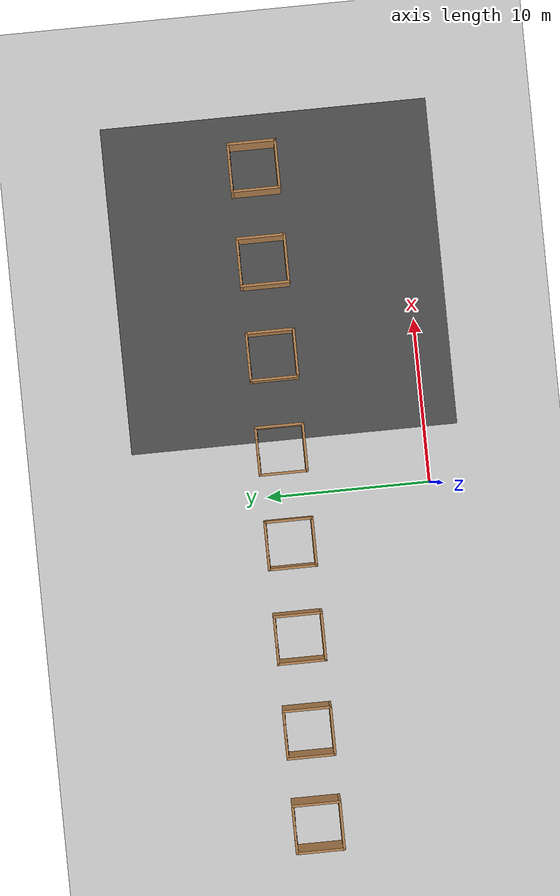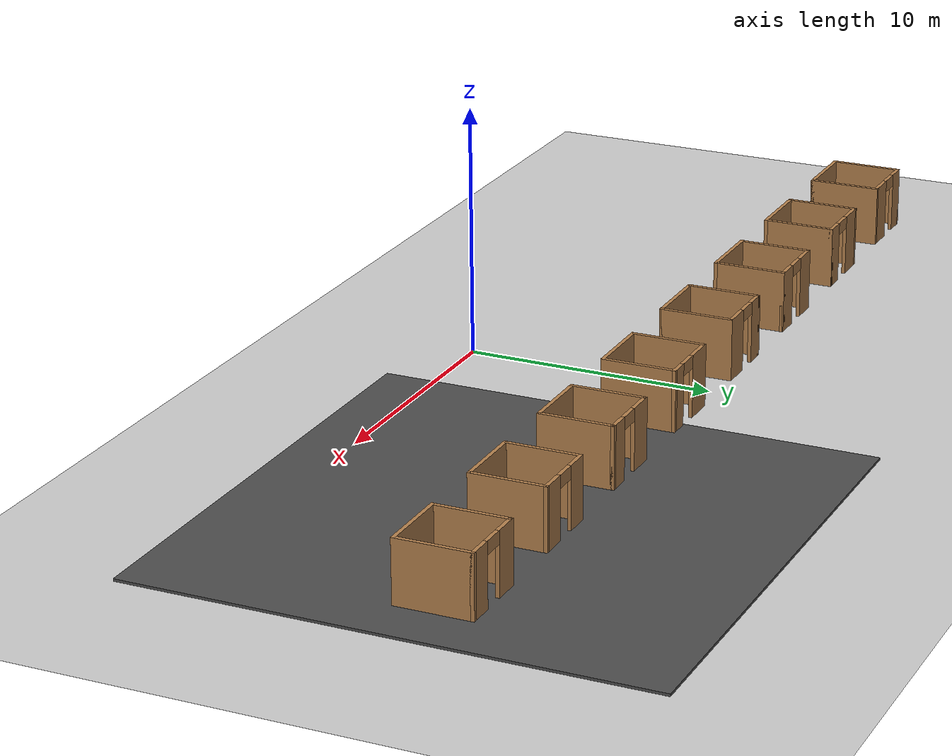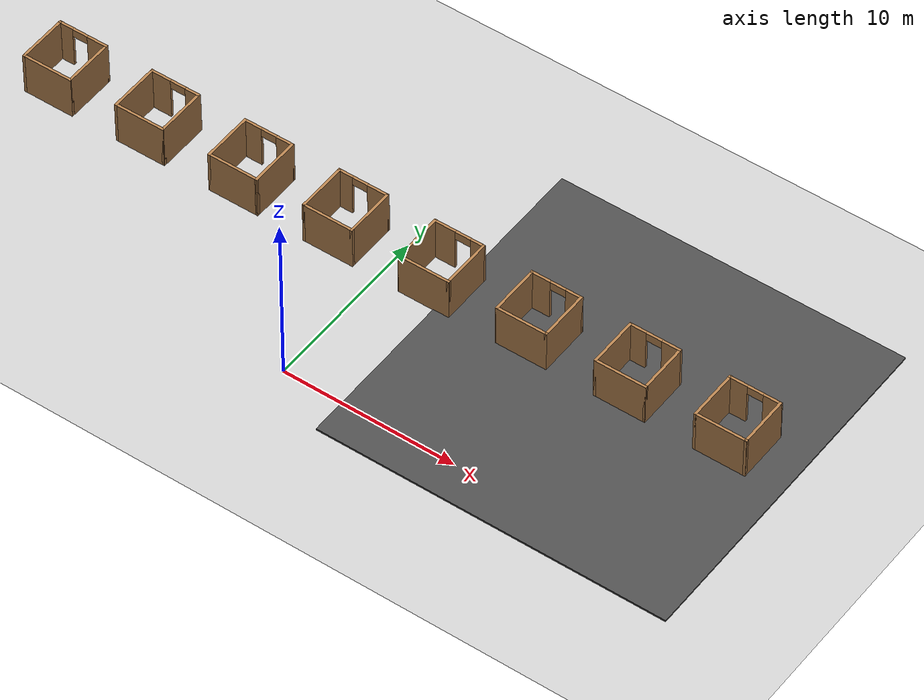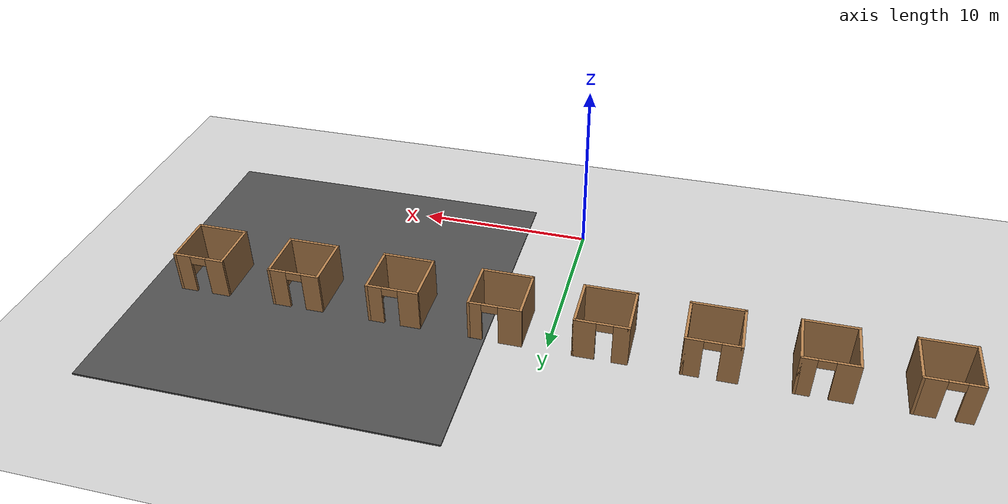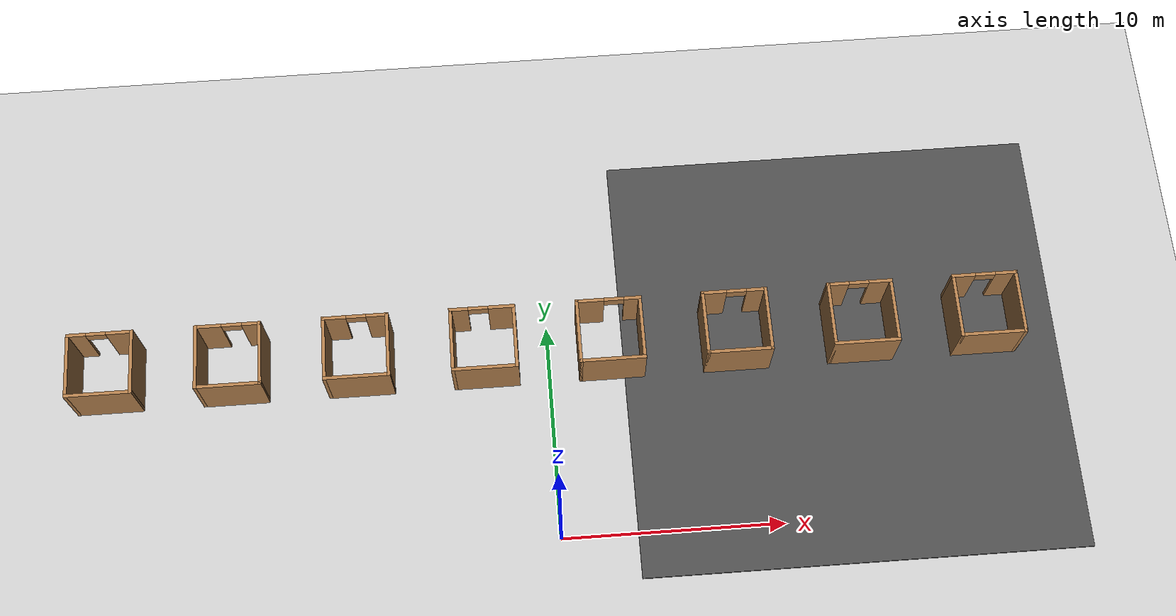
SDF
<sdf version="1.6">
 <world name="default">
  <model name="ground_plane">
   <static>1</static>
   <link name="link">
    <collision name="collision">
     <geometry><plane><normal>0 0 1</normal><size>100 100</size></plane></geometry>
     <surface>
      <contact><collide_bitmask>65535</collide_bitmask></contact>
      <friction><ode><mu>100</mu><mu2>50</mu2></ode></friction>
     </surface>
    </collision>
    <visual name="visual">
     <cast_shadows>0</cast_shadows>
     <geometry><plane><normal>0 0 1</normal><size>100 100</size></plane></geometry>
     <material>
      <script><uri>file://media/materials/scripts/gazebo.material</uri><name>Gazebo/Grey</name></script>
     </material>
    </visual>
   </link>
  </model>
  <model name="room_row_clone_clone_1">
   <pose>-0.00322 8.84362 0 0 -0 0</pose>
   <link name="Wall_11">
    <collision name="Wall_11_Collision">
     <geometry><box><size>3 0.15 2.5</size></box></geometry>
     <pose>0 0 1.25 0 -0 0</pose>
    </collision>
    <visual name="Wall_11_Visual">
     <pose>0 0 1.25 0 -0 0</pose>
     <geometry><box><size>3 0.15 2.5</size></box></geometry>
     <material>
      <script><uri>file://media/materials/scripts/gazebo.material</uri><name>Gazebo/Wood</name></script>
      <ambient>1 1 1 1</ambient>
     </material>
     <meta><layer>0</layer></meta>
    </visual>
    <pose>1.425 0 0 0 -0 -1.5708</pose>
   </link>
   <link name="Wall_12">
    <collision name="Wall_12_Collision">
     <geometry><box><size>3 0.15 2.5</size></box></geometry>
     <pose>0 0 1.25 0 -0 0</pose>
    </collision>
    <visual name="Wall_12_Visual">
     <pose>0 0 1.25 0 -0 0</pose>
     <geometry><box><size>3 0.15 2.5</size></box></geometry>
     <material>
      <script><uri>file://media/materials/scripts/gazebo.material</uri><name>Gazebo/Wood</name></script>
      <ambient>1 1 1 1</ambient>
     </material>
     <meta><layer>0</layer></meta>
    </visual>
    <pose>2.85 -1.425 0 0 -0 0</pose>
   </link>
   <link name="Wall_13">
    <collision name="Wall_13_Collision">
     <geometry><box><size>3 0.15 2.5</size></box></geometry>
     <pose>0 0 1.25 0 -0 0</pose>
    </collision>
    <visual name="Wall_13_Visual">
     <pose>0 0 1.25 0 -0 0</pose>
     <geometry><box><size>3 0.15 2.5</size></box></geometry>
     <material>
      <script><uri>file://media/materials/scripts/gazebo.material</uri><name>Gazebo/Wood</name></script>
      <ambient>1 1 1 1</ambient>
     </material>
     <meta><layer>0</layer></meta>
    </visual>
    <pose>4.275 0 0 0 -0 1.5708</pose>
   </link>
   <link name="Wall_14">
    <pose>2.85 1.425 0 0 -0 3.14159</pose>
    <visual name="Wall_14_Visual_0">
     <pose>-1.10207 0 1.25 0 -0 0</pose>
     <geometry><box><size>0.795857 0.15 2.5</size></box></geometry>
     <material>
      <script><uri>file://media/materials/scripts/gazebo.material</uri><name>Gazebo/Wood</name></script>
      <ambient>1 1 1 1</ambient>
     </material>
     <meta><layer>0</layer></meta>
    </visual>
    <collision name="Wall_14_Collision_0">
     <geometry><box><size>0.795857 0.15 2.5</size></box></geometry>
     <pose>-1.10207 0 1.25 0 -0 0</pose>
    </collision>
    <visual name="Wall_14_Visual_1">
     <pose>0.847928 0 1.25 0 -0 0</pose>
     <geometry><box><size>1.30414 0.15 2.5</size></box></geometry>
     <material>
      <script><uri>file://media/materials/scripts/gazebo.material</uri><name>Gazebo/Wood</name></script>
      <ambient>1 1 1 1</ambient>
     </material>
     <meta><layer>0</layer></meta>
    </visual>
    <collision name="Wall_14_Collision_1">
     <geometry><box><size>1.30414 0.15 2.5</size></box></geometry>
     <pose>0.847928 0 1.25 0 -0 0</pose>
    </collision>
    <visual name="Wall_14_Visual_2">
     <pose>-0.254143 0 2.25 0 -0 0</pose>
     <geometry><box><size>0.9 0.15 0.5</size></box></geometry>
     <material>
      <script><uri>file://media/materials/scripts/gazebo.material</uri><name>Gazebo/Wood</name></script>
      <ambient>1 1 1 1</ambient>
     </material>
     <meta><layer>0</layer></meta>
    </visual>
    <collision name="Wall_14_Collision_2">
     <geometry><box><size>0.9 0.15 0.5</size></box></geometry>
     <pose>-0.254143 0 2.25 0 -0 0</pose>
    </collision>
   </link>
   <link name="Wall_17">
    <collision name="Wall_17_Collision">
     <geometry><box><size>3 0.15 2.5</size></box></geometry>
     <pose>0 0 1.25 0 -0 0</pose>
    </collision>
    <visual name="Wall_17_Visual">
     <pose>0 0 1.25 0 -0 0</pose>
     <geometry><box><size>3 0.15 2.5</size></box></geometry>
     <material>
      <script><uri>file://media/materials/scripts/gazebo.material</uri><name>Gazebo/Wood</name></script>
      <ambient>1 1 1 1</ambient>
     </material>
     <meta><layer>0</layer></meta>
    </visual>
    <pose>7.125 0 0 0 -0 -1.5708</pose>
   </link>
   <link name="Wall_18">
    <collision name="Wall_18_Collision">
     <geometry><box><size>3 0.15 2.5</size></box></geometry>
     <pose>0 0 1.25 0 -0 0</pose>
    </collision>
    <visual name="Wall_18_Visual">
     <pose>0 0 1.25 0 -0 0</pose>
     <geometry><box><size>3 0.15 2.5</size></box></geometry>
     <material>
      <script><uri>file://media/materials/scripts/gazebo.material</uri><name>Gazebo/Wood</name></script>
      <ambient>1 1 1 1</ambient>
     </material>
     <meta><layer>0</layer></meta>
    </visual>
    <pose>8.55 -1.425 0 0 -0 0</pose>
   </link>
   <link name="Wall_19">
    <collision name="Wall_19_Collision">
     <geometry><box><size>3 0.15 2.5</size></box></geometry>
     <pose>0 0 1.25 0 -0 0</pose>
    </collision>
    <visual name="Wall_19_Visual">
     <pose>0 0 1.25 0 -0 0</pose>
     <geometry><box><size>3 0.15 2.5</size></box></geometry>
     <material>
      <script><uri>file://media/materials/scripts/gazebo.material</uri><name>Gazebo/Wood</name></script>
      <ambient>1 1 1 1</ambient>
     </material>
     <meta><layer>0</layer></meta>
    </visual>
    <pose>9.975 0 0 0 -0 1.5708</pose>
   </link>
   <link name="Wall_20">
    <pose>8.55 1.425 0 0 -0 3.14159</pose>
    <visual name="Wall_20_Visual_0">
     <pose>-1.03119 0 1.25 0 -0 0</pose>
     <geometry><box><size>0.937612 0.15 2.5</size></box></geometry>
     <material>
      <script><uri>file://media/materials/scripts/gazebo.material</uri><name>Gazebo/Wood</name></script>
      <ambient>1 1 1 1</ambient>
     </material>
     <meta><layer>0</layer></meta>
    </visual>
    <collision name="Wall_20_Collision_0">
     <geometry><box><size>0.937612 0.15 2.5</size></box></geometry>
     <pose>-1.03119 0 1.25 0 -0 0</pose>
    </collision>
    <visual name="Wall_20_Visual_1">
     <pose>0.918806 0 1.25 0 -0 0</pose>
     <geometry><box><size>1.16239 0.15 2.5</size></box></geometry>
     <material>
      <script><uri>file://media/materials/scripts/gazebo.material</uri><name>Gazebo/Wood</name></script>
      <ambient>1 1 1 1</ambient>
     </material>
     <meta><layer>0</layer></meta>
    </visual>
    <collision name="Wall_20_Collision_1">
     <geometry><box><size>1.16239 0.15 2.5</size></box></geometry>
     <pose>0.918806 0 1.25 0 -0 0</pose>
    </collision>
    <visual name="Wall_20_Visual_2">
     <pose>-0.112388 0 2.25 0 -0 0</pose>
     <geometry><box><size>0.9 0.15 0.5</size></box></geometry>
     <material>
      <script><uri>file://media/materials/scripts/gazebo.material</uri><name>Gazebo/Wood</name></script>
      <ambient>1 1 1 1</ambient>
     </material>
     <meta><layer>0</layer></meta>
    </visual>
    <collision name="Wall_20_Collision_2">
     <geometry><box><size>0.9 0.15 0.5</size></box></geometry>
     <pose>-0.112388 0 2.25 0 -0 0</pose>
    </collision>
   </link>
   <link name="Wall_23">
    <collision name="Wall_23_Collision">
     <geometry><box><size>3 0.15 2.5</size></box></geometry>
     <pose>0 0 1.25 0 -0 0</pose>
    </collision>
    <visual name="Wall_23_Visual">
     <pose>0 0 1.25 0 -0 0</pose>
     <geometry><box><size>3 0.15 2.5</size></box></geometry>
     <material>
      <script><uri>file://media/materials/scripts/gazebo.material</uri><name>Gazebo/Wood</name></script>
      <ambient>1 1 1 1</ambient>
     </material>
     <meta><layer>0</layer></meta>
    </visual>
    <pose>-7.125 0 0 0 -0 -1.5708</pose>
   </link>
   <link name="Wall_24">
    <collision name="Wall_24_Collision">
     <geometry><box><size>3 0.15 2.5</size></box></geometry>
     <pose>0 0 1.25 0 -0 0</pose>
    </collision>
    <visual name="Wall_24_Visual">
     <pose>0 0 1.25 0 -0 0</pose>
     <geometry><box><size>3 0.15 2.5</size></box></geometry>
     <material>
      <script><uri>file://media/materials/scripts/gazebo.material</uri><name>Gazebo/Wood</name></script>
      <ambient>1 1 1 1</ambient>
     </material>
     <meta><layer>0</layer></meta>
    </visual>
    <pose>-8.55 -1.425 0 0 -0 3.14159</pose>
   </link>
   <link name="Wall_25">
    <collision name="Wall_25_Collision">
     <geometry><box><size>3 0.15 2.5</size></box></geometry>
     <pose>0 0 1.25 0 -0 0</pose>
    </collision>
    <visual name="Wall_25_Visual">
     <pose>0 0 1.25 0 -0 0</pose>
     <geometry><box><size>3 0.15 2.5</size></box></geometry>
     <material>
      <script><uri>file://media/materials/scripts/gazebo.material</uri><name>Gazebo/Wood</name></script>
      <ambient>1 1 1 1</ambient>
     </material>
     <meta><layer>0</layer></meta>
    </visual>
    <pose>-9.975 0 0 0 -0 1.5708</pose>
   </link>
   <link name="Wall_26">
    <pose>-8.55 1.425 0 0 -0 0</pose>
    <visual name="Wall_26_Visual_0">
     <pose>-0.952424 0 1.25 0 -0 0</pose>
     <geometry><box><size>1.09515 0.15 2.5</size></box></geometry>
     <material>
      <script><uri>file://media/materials/scripts/gazebo.material</uri><name>Gazebo/Wood</name></script>
      <ambient>1 1 1 1</ambient>
     </material>
     <meta><layer>0</layer></meta>
    </visual>
    <collision name="Wall_26_Collision_0">
     <geometry><box><size>1.09515 0.15 2.5</size></box></geometry>
     <pose>-0.952424 0 1.25 0 -0 0</pose>
    </collision>
    <visual name="Wall_26_Visual_1">
     <pose>0.997576 0 1.25 0 -0 0</pose>
     <geometry><box><size>1.00485 0.15 2.5</size></box></geometry>
     <material>
      <script><uri>file://media/materials/scripts/gazebo.material</uri><name>Gazebo/Wood</name></script>
      <ambient>1 1 1 1</ambient>
     </material>
     <meta><layer>0</layer></meta>
    </visual>
    <collision name="Wall_26_Collision_1">
     <geometry><box><size>1.00485 0.15 2.5</size></box></geometry>
     <pose>0.997576 0 1.25 0 -0 0</pose>
    </collision>
    <visual name="Wall_26_Visual_2">
     <pose>0.045152 0 2.25 0 -0 0</pose>
     <geometry><box><size>0.9 0.15 0.5</size></box></geometry>
     <material>
      <script><uri>file://media/materials/scripts/gazebo.material</uri><name>Gazebo/Wood</name></script>
      <ambient>1 1 1 1</ambient>
     </material>
     <meta><layer>0</layer></meta>
    </visual>
    <collision name="Wall_26_Collision_2">
     <geometry><box><size>0.9 0.15 0.5</size></box></geometry>
     <pose>0.045152 0 2.25 0 -0 0</pose>
    </collision>
   </link>
   <link name="Wall_29">
    <collision name="Wall_29_Collision">
     <geometry><box><size>3 0.15 2.5</size></box></geometry>
     <pose>0 0 1.25 0 -0 0</pose>
    </collision>
    <visual name="Wall_29_Visual">
     <pose>0 0 1.25 0 -0 0</pose>
     <geometry><box><size>3 0.15 2.5</size></box></geometry>
     <material>
      <script><uri>file://media/materials/scripts/gazebo.material</uri><name>Gazebo/Wood</name></script>
      <ambient>1 1 1 1</ambient>
     </material>
     <meta><layer>0</layer></meta>
    </visual>
    <pose>-12.825 0 0 0 -0 -1.5708</pose>
   </link>
   <link name="Wall_30">
    <collision name="Wall_30_Collision">
     <geometry><box><size>3 0.15 2.5</size></box></geometry>
     <pose>0 0 1.25 0 -0 0</pose>
    </collision>
    <visual name="Wall_30_Visual">
     <pose>0 0 1.25 0 -0 0</pose>
     <geometry><box><size>3 0.15 2.5</size></box></geometry>
     <material>
      <script><uri>file://media/materials/scripts/gazebo.material</uri><name>Gazebo/Wood</name></script>
      <ambient>1 1 1 1</ambient>
     </material>
     <meta><layer>0</layer></meta>
    </visual>
    <pose>-14.25 -1.425 0 0 -0 3.14159</pose>
   </link>
   <link name="Wall_31">
    <collision name="Wall_31_Collision">
     <geometry><box><size>3 0.15 2.5</size></box></geometry>
     <pose>0 0 1.25 0 -0 0</pose>
    </collision>
    <visual name="Wall_31_Visual">
     <pose>0 0 1.25 0 -0 0</pose>
     <geometry><box><size>3 0.15 2.5</size></box></geometry>
     <material>
      <script><uri>file://media/materials/scripts/gazebo.material</uri><name>Gazebo/Wood</name></script>
      <ambient>1 1 1 1</ambient>
     </material>
     <meta><layer>0</layer></meta>
    </visual>
    <pose>-15.675 0 0 0 -0 1.5708</pose>
   </link>
   <link name="Wall_32">
    <pose>-14.25 1.425 0 0 -0 0</pose>
    <visual name="Wall_32_Visual_0">
     <pose>-0.881547 0 1.25 0 -0 0</pose>
     <geometry><box><size>1.23691 0.15 2.5</size></box></geometry>
     <material>
      <script><uri>file://media/materials/scripts/gazebo.material</uri><name>Gazebo/Wood</name></script>
      <ambient>1 1 1 1</ambient>
     </material>
     <meta><layer>0</layer></meta>
    </visual>
    <collision name="Wall_32_Collision_0">
     <geometry><box><size>1.23691 0.15 2.5</size></box></geometry>
     <pose>-0.881547 0 1.25 0 -0 0</pose>
    </collision>
    <visual name="Wall_32_Visual_1">
     <pose>1.06845 0 1.25 0 -0 0</pose>
     <geometry><box><size>0.863093 0.15 2.5</size></box></geometry>
     <material>
      <script><uri>file://media/materials/scripts/gazebo.material</uri><name>Gazebo/Wood</name></script>
      <ambient>1 1 1 1</ambient>
     </material>
     <meta><layer>0</layer></meta>
    </visual>
    <collision name="Wall_32_Collision_1">
     <geometry><box><size>0.863093 0.15 2.5</size></box></geometry>
     <pose>1.06845 0 1.25 0 -0 0</pose>
    </collision>
    <visual name="Wall_32_Visual_2">
     <pose>0.186907 0 2.25 0 -0 0</pose>
     <geometry><box><size>0.9 0.15 0.5</size></box></geometry>
     <material>
      <script><uri>file://media/materials/scripts/gazebo.material</uri><name>Gazebo/Wood</name></script>
      <ambient>1 1 1 1</ambient>
     </material>
     <meta><layer>0</layer></meta>
    </visual>
    <collision name="Wall_32_Collision_2">
     <geometry><box><size>0.9 0.15 0.5</size></box></geometry>
     <pose>0.186907 0 2.25 0 -0 0</pose>
    </collision>
   </link>
   <link name="Wall_35">
    <collision name="Wall_35_Collision">
     <geometry><box><size>3 0.15 2.5</size></box></geometry>
     <pose>0 0 1.25 0 -0 0</pose>
    </collision>
    <visual name="Wall_35_Visual">
     <pose>0 0 1.25 0 -0 0</pose>
     <geometry><box><size>3 0.15 2.5</size></box></geometry>
     <material>
      <script><uri>file://media/materials/scripts/gazebo.material</uri><name>Gazebo/Wood</name></script>
      <ambient>1 1 1 1</ambient>
     </material>
     <meta><layer>0</layer></meta>
    </visual>
    <pose>12.825 0 0 0 -0 -1.5708</pose>
   </link>
   <link name="Wall_36">
    <collision name="Wall_36_Collision">
     <geometry><box><size>3 0.15 2.5</size></box></geometry>
     <pose>0 0 1.25 0 -0 0</pose>
    </collision>
    <visual name="Wall_36_Visual">
     <pose>0 0 1.25 0 -0 0</pose>
     <geometry><box><size>3 0.15 2.5</size></box></geometry>
     <material>
      <script><uri>file://media/materials/scripts/gazebo.material</uri><name>Gazebo/Wood</name></script>
      <ambient>1 1 1 1</ambient>
     </material>
     <meta><layer>0</layer></meta>
    </visual>
    <pose>14.25 -1.425 0 0 -0 0</pose>
   </link>
   <link name="Wall_37">
    <collision name="Wall_37_Collision">
     <geometry><box><size>3 0.15 2.5</size></box></geometry>
     <pose>0 0 1.25 0 -0 0</pose>
    </collision>
    <visual name="Wall_37_Visual">
     <pose>0 0 1.25 0 -0 0</pose>
     <geometry><box><size>3 0.15 2.5</size></box></geometry>
     <material>
      <script><uri>file://media/materials/scripts/gazebo.material</uri><name>Gazebo/Wood</name></script>
      <ambient>1 1 1 1</ambient>
     </material>
     <meta><layer>0</layer></meta>
    </visual>
    <pose>15.675 0 0 0 -0 1.5708</pose>
   </link>
   <link name="Wall_38">
    <pose>14.25 1.425 0 0 -0 3.14159</pose>
    <visual name="Wall_38_Visual_0">
     <pose>-0.960316 0 1.25 0 -0 0</pose>
     <geometry><box><size>1.07937 0.15 2.5</size></box></geometry>
     <material>
      <script><uri>file://media/materials/scripts/gazebo.material</uri><name>Gazebo/Wood</name></script>
      <ambient>1 1 1 1</ambient>
     </material>
     <meta><layer>0</layer></meta>
    </visual>
    <collision name="Wall_38_Collision_0">
     <geometry><box><size>1.07937 0.15 2.5</size></box></geometry>
     <pose>-0.960316 0 1.25 0 -0 0</pose>
    </collision>
    <visual name="Wall_38_Visual_1">
     <pose>0.989684 0 1.25 0 -0 0</pose>
     <geometry><box><size>1.02063 0.15 2.5</size></box></geometry>
     <material>
      <script><uri>file://media/materials/scripts/gazebo.material</uri><name>Gazebo/Wood</name></script>
      <ambient>1 1 1 1</ambient>
     </material>
     <meta><layer>0</layer></meta>
    </visual>
    <collision name="Wall_38_Collision_1">
     <geometry><box><size>1.02063 0.15 2.5</size></box></geometry>
     <pose>0.989684 0 1.25 0 -0 0</pose>
    </collision>
    <visual name="Wall_38_Visual_2">
     <pose>0.029367 0 2.25 0 -0 0</pose>
     <geometry><box><size>0.9 0.15 0.5</size></box></geometry>
     <material>
      <script><uri>file://media/materials/scripts/gazebo.material</uri><name>Gazebo/Wood</name></script>
      <ambient>1 1 1 1</ambient>
     </material>
     <meta><layer>0</layer></meta>
    </visual>
    <collision name="Wall_38_Collision_2">
     <geometry><box><size>0.9 0.15 0.5</size></box></geometry>
     <pose>0.029367 0 2.25 0 -0 0</pose>
    </collision>
   </link>
   <link name="Wall_41">
    <collision name="Wall_41_Collision">
     <geometry><box><size>3 0.15 2.5</size></box></geometry>
     <pose>0 0 1.25 0 -0 0</pose>
    </collision>
    <visual name="Wall_41_Visual">
     <pose>0 0 1.25 0 -0 0</pose>
     <geometry><box><size>3 0.15 2.5</size></box></geometry>
     <material>
      <script><uri>file://media/materials/scripts/gazebo.material</uri><name>Gazebo/Wood</name></script>
      <ambient>1 1 1 1</ambient>
     </material>
     <meta><layer>0</layer></meta>
    </visual>
    <pose>-18.525 0 0 0 -0 -1.5708</pose>
   </link>
   <link name="Wall_42">
    <collision name="Wall_42_Collision">
     <geometry><box><size>3 0.15 2.5</size></box></geometry>
     <pose>0 0 1.25 0 -0 0</pose>
    </collision>
    <visual name="Wall_42_Visual">
     <pose>0 0 1.25 0 -0 0</pose>
     <geometry><box><size>3 0.15 2.5</size></box></geometry>
     <material>
      <script><uri>file://media/materials/scripts/gazebo.material</uri><name>Gazebo/Wood</name></script>
      <ambient>1 1 1 1</ambient>
     </material>
     <meta><layer>0</layer></meta>
    </visual>
    <pose>-19.95 -1.425 0 0 -0 3.14159</pose>
   </link>
   <link name="Wall_45">
    <pose>-19.95 1.425 0 0 -0 3.14159</pose>
    <visual name="Wall_45_Visual_0">
     <pose>-0.89308 0 1.25 0 -0 0</pose>
     <geometry><box><size>1.21384 0.15 2.5</size></box></geometry>
     <material>
      <script><uri>file://media/materials/scripts/gazebo.material</uri><name>Gazebo/Wood</name></script>
      <ambient>1 1 1 1</ambient>
     </material>
     <meta><layer>0</layer></meta>
    </visual>
    <collision name="Wall_45_Collision_0">
     <geometry><box><size>1.21384 0.15 2.5</size></box></geometry>
     <pose>-0.89308 0 1.25 0 -0 0</pose>
    </collision>
    <visual name="Wall_45_Visual_1">
     <pose>1.05692 0 1.25 0 -0 0</pose>
     <geometry><box><size>0.886161 0.15 2.5</size></box></geometry>
     <material>
      <script><uri>file://media/materials/scripts/gazebo.material</uri><name>Gazebo/Wood</name></script>
      <ambient>1 1 1 1</ambient>
     </material>
     <meta><layer>0</layer></meta>
    </visual>
    <collision name="Wall_45_Collision_1">
     <geometry><box><size>0.886161 0.15 2.5</size></box></geometry>
     <pose>1.05692 0 1.25 0 -0 0</pose>
    </collision>
    <visual name="Wall_45_Visual_2">
     <pose>0.163839 0 2.25 0 -0 0</pose>
     <geometry><box><size>0.9 0.15 0.5</size></box></geometry>
     <material>
      <script><uri>file://media/materials/scripts/gazebo.material</uri><name>Gazebo/Wood</name></script>
      <ambient>1 1 1 1</ambient>
     </material>
     <meta><layer>0</layer></meta>
    </visual>
    <collision name="Wall_45_Collision_2">
     <geometry><box><size>0.9 0.15 0.5</size></box></geometry>
     <pose>0.163839 0 2.25 0 -0 0</pose>
    </collision>
   </link>
   <link name="Wall_46">
    <collision name="Wall_46_Collision">
     <geometry><box><size>3 0.15 2.5</size></box></geometry>
     <pose>0 0 1.25 0 -0 0</pose>
    </collision>
    <visual name="Wall_46_Visual">
     <pose>0 0 1.25 0 -0 0</pose>
     <geometry><box><size>3 0.15 2.5</size></box></geometry>
     <material>
      <script><uri>file://media/materials/scripts/gazebo.material</uri><name>Gazebo/Wood</name></script>
      <ambient>1 1 1 1</ambient>
     </material>
     <meta><layer>0</layer></meta>
    </visual>
    <pose>-21.375 0 0 0 -0 -1.5708</pose>
   </link>
   <link name="Wall_49">
    <collision name="Wall_49_Collision">
     <geometry><box><size>3 0.15 2.5</size></box></geometry>
     <pose>0 0 1.25 0 -0 0</pose>
    </collision>
    <visual name="Wall_49_Visual">
     <pose>0 0 1.25 0 -0 0</pose>
     <geometry><box><size>3 0.15 2.5</size></box></geometry>
     <material>
      <script><uri>file://media/materials/scripts/gazebo.material</uri><name>Gazebo/Wood</name></script>
      <ambient>1 1 1 1</ambient>
     </material>
     <meta><layer>0</layer></meta>
    </visual>
    <pose>18.525 0 0 0 -0 -1.5708</pose>
   </link>
   <link name="Wall_5">
    <pose>-2.85 1.425 0 0 -0 0</pose>
    <visual name="Wall_5_Visual_0">
     <pose>-1.05848 0 1.25 0 -0 0</pose>
     <geometry><box><size>0.883039 0.15 2.5</size></box></geometry>
     <material>
      <script><uri>file://media/materials/scripts/gazebo.material</uri><name>Gazebo/Wood</name></script>
      <ambient>1 1 1 1</ambient>
     </material>
     <meta><layer>0</layer></meta>
    </visual>
    <collision name="Wall_5_Collision_0">
     <geometry><box><size>0.883039 0.15 2.5</size></box></geometry>
     <pose>-1.05848 0 1.25 0 -0 0</pose>
    </collision>
    <visual name="Wall_5_Visual_1">
     <pose>0.891519 0 1.25 0 -0 0</pose>
     <geometry><box><size>1.21696 0.15 2.5</size></box></geometry>
     <material>
      <script><uri>file://media/materials/scripts/gazebo.material</uri><name>Gazebo/Wood</name></script>
      <ambient>1 1 1 1</ambient>
     </material>
     <meta><layer>0</layer></meta>
    </visual>
    <collision name="Wall_5_Collision_1">
     <geometry><box><size>1.21696 0.15 2.5</size></box></geometry>
     <pose>0.891519 0 1.25 0 -0 0</pose>
    </collision>
    <visual name="Wall_5_Visual_2">
     <pose>-0.166961 0 2.25 0 -0 0</pose>
     <geometry><box><size>0.9 0.15 0.5</size></box></geometry>
     <material>
      <script><uri>file://media/materials/scripts/gazebo.material</uri><name>Gazebo/Wood</name></script>
      <ambient>1 1 1 1</ambient>
     </material>
     <meta><layer>0</layer></meta>
    </visual>
    <collision name="Wall_5_Collision_2">
     <geometry><box><size>0.9 0.15 0.5</size></box></geometry>
     <pose>-0.166961 0 2.25 0 -0 0</pose>
    </collision>
   </link>
   <link name="Wall_51">
    <collision name="Wall_51_Collision">
     <geometry><box><size>3 0.15 2.5</size></box></geometry>
     <pose>0 0 1.25 0 -0 0</pose>
    </collision>
    <visual name="Wall_51_Visual">
     <pose>0 0 1.25 0 -0 0</pose>
     <geometry><box><size>3 0.15 2.5</size></box></geometry>
     <material>
      <script><uri>file://media/materials/scripts/gazebo.material</uri><name>Gazebo/Wood</name></script>
      <ambient>1 1 1 1</ambient>
     </material>
     <meta><layer>0</layer></meta>
    </visual>
    <pose>19.95 -1.425 0 0 -0 0</pose>
   </link>
   <link name="Wall_53">
    <collision name="Wall_53_Collision">
     <geometry><box><size>3 0.15 2.5</size></box></geometry>
     <pose>0 0 1.25 0 -0 0</pose>
    </collision>
    <visual name="Wall_53_Visual">
     <pose>0 0 1.25 0 -0 0</pose>
     <geometry><box><size>3 0.15 2.5</size></box></geometry>
     <material>
      <script><uri>file://media/materials/scripts/gazebo.material</uri><name>Gazebo/Wood</name></script>
      <ambient>1 1 1 1</ambient>
     </material>
     <meta><layer>0</layer></meta>
    </visual>
    <pose>21.375 0 0 0 -0 1.5708</pose>
   </link>
   <link name="Wall_54">
    <pose>19.95 1.425 0 0 -0 3.14159</pose>
    <visual name="Wall_54_Visual_0">
     <pose>-0.994975 0 1.25 0 -0 0</pose>
     <geometry><box><size>1.01005 0.15 2.5</size></box></geometry>
     <material>
      <script><uri>file://media/materials/scripts/gazebo.material</uri><name>Gazebo/Wood</name></script>
      <ambient>1 1 1 1</ambient>
     </material>
     <meta><layer>0</layer></meta>
    </visual>
    <collision name="Wall_54_Collision_0">
     <geometry><box><size>1.01005 0.15 2.5</size></box></geometry>
     <pose>-0.994975 0 1.25 0 -0 0</pose>
    </collision>
    <visual name="Wall_54_Visual_1">
     <pose>0.955025 0 1.25 0 -0 0</pose>
     <geometry><box><size>1.08995 0.15 2.5</size></box></geometry>
     <material>
      <script><uri>file://media/materials/scripts/gazebo.material</uri><name>Gazebo/Wood</name></script>
      <ambient>1 1 1 1</ambient>
     </material>
     <meta><layer>0</layer></meta>
    </visual>
    <collision name="Wall_54_Collision_1">
     <geometry><box><size>1.08995 0.15 2.5</size></box></geometry>
     <pose>0.955025 0 1.25 0 -0 0</pose>
    </collision>
    <visual name="Wall_54_Visual_2">
     <pose>-0.039949 0 2.25 0 -0 0</pose>
     <geometry><box><size>0.9 0.15 0.5</size></box></geometry>
     <material>
      <script><uri>file://media/materials/scripts/gazebo.material</uri><name>Gazebo/Wood</name></script>
      <ambient>1 1 1 1</ambient>
     </material>
     <meta><layer>0</layer></meta>
    </visual>
    <collision name="Wall_54_Collision_2">
     <geometry><box><size>0.9 0.15 0.5</size></box></geometry>
     <pose>-0.039949 0 2.25 0 -0 0</pose>
    </collision>
   </link>
   <link name="Wall_6">
    <collision name="Wall_6_Collision">
     <geometry><box><size>3 0.15 2.5</size></box></geometry>
     <pose>0 0 1.25 0 -0 0</pose>
    </collision>
    <visual name="Wall_6_Visual">
     <pose>0 0 1.25 0 -0 0</pose>
     <geometry><box><size>3 0.15 2.5</size></box></geometry>
     <material>
      <script><uri>file://media/materials/scripts/gazebo.material</uri><name>Gazebo/Wood</name></script>
      <ambient>1 1 1 1</ambient>
     </material>
     <meta><layer>0</layer></meta>
    </visual>
    <pose>-1.425 0 0 0 -0 -1.5708</pose>
   </link>
   <link name="Wall_7">
    <collision name="Wall_7_Collision">
     <geometry><box><size>3 0.15 2.5</size></box></geometry>
     <pose>0 0 1.25 0 -0 0</pose>
    </collision>
    <visual name="Wall_7_Visual">
     <pose>0 0 1.25 0 -0 0</pose>
     <geometry><box><size>3 0.15 2.5</size></box></geometry>
     <material>
      <script><uri>file://media/materials/scripts/gazebo.material</uri><name>Gazebo/Wood</name></script>
      <ambient>1 1 1 1</ambient>
     </material>
     <meta><layer>0</layer></meta>
    </visual>
    <pose>-2.85 -1.425 0 0 -0 3.14159</pose>
   </link>
   <link name="Wall_8">
    <collision name="Wall_8_Collision">
     <geometry><box><size>3 0.15 2.5</size></box></geometry>
     <pose>0 0 1.25 0 -0 0</pose>
    </collision>
    <visual name="Wall_8_Visual">
     <pose>0 0 1.25 0 -0 0</pose>
     <geometry><box><size>3 0.15 2.5</size></box></geometry>
     <material>
      <script><uri>file://media/materials/scripts/gazebo.material</uri><name>Gazebo/Wood</name></script>
      <ambient>1 1 1 1</ambient>
     </material>
     <meta><layer>0</layer></meta>
    </visual>
    <pose>-4.275 0 0 0 -0 1.5708</pose>
   </link>
   <static>1</static>
  </model>
  <model name="asphalt_plane">
   <static>1</static>
   <link name="link">
    <collision name="collision"><geometry><box><size>20 20 0.1</size></box></geometry></collision>
    <visual name="visual">
     <cast_shadows>0</cast_shadows>
     <geometry><box><size>20 20 0.1</size></box></geometry>
     <material>
      <script>
       <uri>model://asphalt_plane/materials/scripts</uri>
       <uri>model://asphalt_plane/materials/textures</uri>
       <name>vrc/asphalt</name>
      </script>
     </material>
    </visual>
   </link>
   <pose>13.4266 7.98499 0 0 -0 0</pose>
  </model>
 </world>
</sdf>
